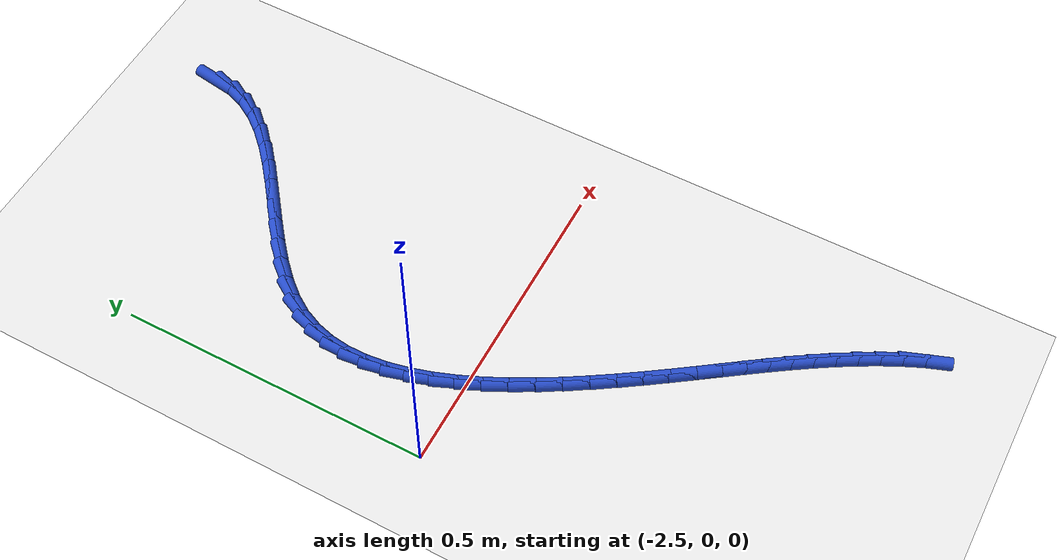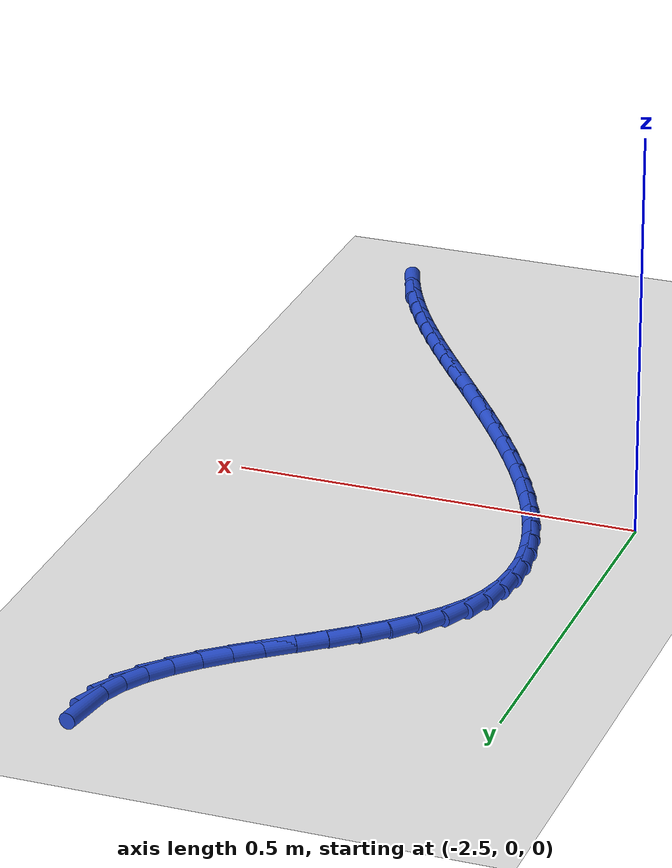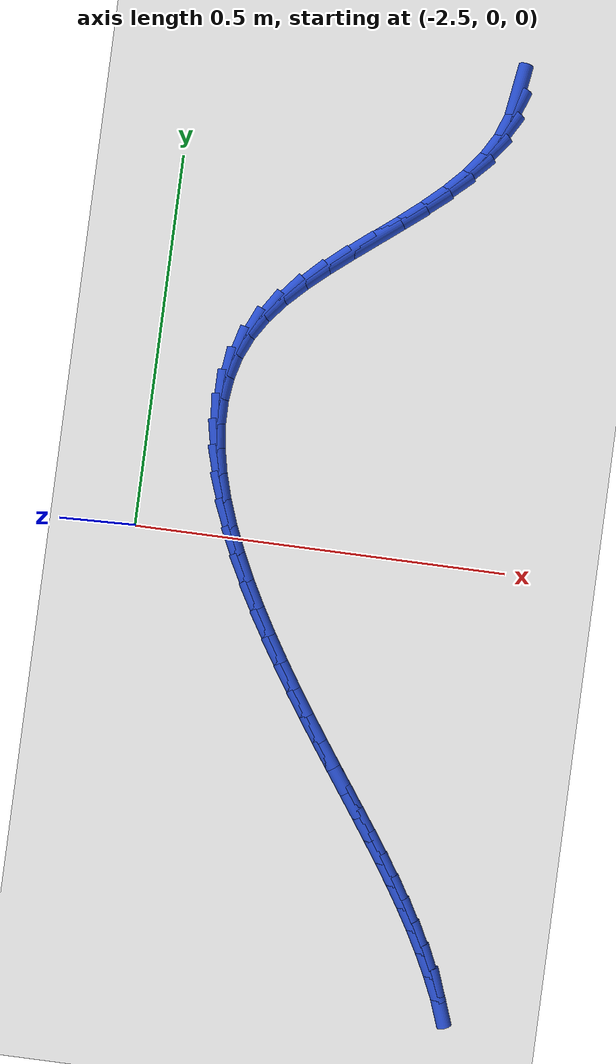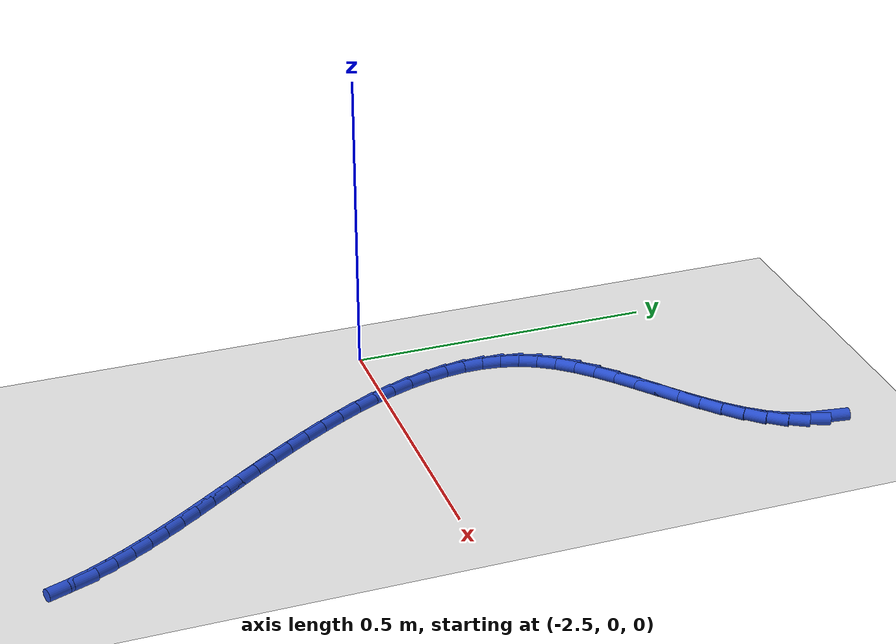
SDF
<sdf version="1.6">
 <world name="default">
  <model name="ground_plane">
   <static>1</static>
   <link name="link">
    <collision name="collision">
     <geometry><plane><normal>0 0 1</normal><size>100 100</size></plane></geometry>
     <surface><friction><ode><mu>100</mu><mu2>50</mu2></ode></friction></surface>
    </collision>
    <visual name="visual">
     <cast_shadows>0</cast_shadows>
     <geometry><plane><normal>0 0 1</normal><size>100 100</size></plane></geometry>
     <material>
      <script><uri>file://media/materials/scripts/gazebo.material</uri><name>Gazebo/WhiteGlow</name></script>
     </material>
    </visual>
   </link>
  </model>
  <model name="line">
   <link name="link_107">
    <pose>-2.067058191269066 0.6368177555527194 0.01 0 1.57 1.4261822368312853</pose>
    <collision name="collision">
     <geometry><cylinder><radius>0.01</radius><length>0.08</length></cylinder></geometry>
    </collision>
    <visual name="visual">
     <material>
      <script><name>Gazebo/Blue</name><uri>file://media/materials/scripts/gazebo.material</uri></script>
     </material>
     <geometry><cylinder><radius>0.01</radius><length>0.08</length></cylinder></geometry>
    </visual>
   </link>
   <link name="link_108">
    <pose>-2.0716982339166807 0.604956051340276 0.01 0 1.57 1.2206146301433258</pose>
    <collision name="collision">
     <geometry><cylinder><radius>0.01</radius><length>0.08</length></cylinder></geometry>
    </collision>
    <visual name="visual">
     <material>
      <script><name>Gazebo/Blue</name><uri>file://media/materials/scripts/gazebo.material</uri></script>
     </material>
     <geometry><cylinder><radius>0.01</radius><length>0.08</length></cylinder></geometry>
    </visual>
   </link>
   <link name="link_109">
    <pose>-2.082626198112787 0.5750356393155613 0.01 0 1.57 1.046548734440967</pose>
    <collision name="collision">
     <geometry><cylinder><radius>0.01</radius><length>0.08</length></cylinder></geometry>
    </collision>
    <visual name="visual">
     <material>
      <script><name>Gazebo/Blue</name><uri>file://media/materials/scripts/gazebo.material</uri></script>
     </material>
     <geometry><cylinder><radius>0.01</radius><length>0.08</length></cylinder></geometry>
    </visual>
   </link>
   <link name="link_110">
    <pose>-2.098957802761702 0.5467908075974574 0.01 0 1.57 0.9102333662154162</pose>
    <collision name="collision">
     <geometry><cylinder><radius>0.01</radius><length>0.08</length></cylinder></geometry>
    </collision>
    <visual name="visual">
     <material>
      <script><name>Gazebo/Blue</name><uri>file://media/materials/scripts/gazebo.material</uri></script>
     </material>
     <geometry><cylinder><radius>0.01</radius><length>0.08</length></cylinder></geometry>
    </visual>
   </link>
   <link name="link_111">
    <pose>-2.119808766767741 0.519955844304846 0.01 0 1.57 0.8094039164450072</pose>
    <collision name="collision">
     <geometry><cylinder><radius>0.01</radius><length>0.08</length></cylinder></geometry>
    </collision>
    <visual name="visual">
     <material>
      <script><name>Gazebo/Blue</name><uri>file://media/materials/scripts/gazebo.material</uri></script>
     </material>
     <geometry><cylinder><radius>0.01</radius><length>0.08</length></cylinder></geometry>
    </visual>
   </link>
   <link name="link_112">
    <pose>-2.1442948090352196 0.4942650375566095 0.01 0 1.57 0.7388513181055697</pose>
    <collision name="collision">
     <geometry><cylinder><radius>0.01</radius><length>0.08</length></cylinder></geometry>
    </collision>
    <visual name="visual">
     <material>
      <script><name>Gazebo/Blue</name><uri>file://media/materials/scripts/gazebo.material</uri></script>
     </material>
     <geometry><cylinder><radius>0.01</radius><length>0.08</length></cylinder></geometry>
    </visual>
   </link>
   <link name="link_113">
    <pose>-2.171531648468454 0.46945267547162994 0.01 0 1.57 0.6936591765680888</pose>
    <collision name="collision">
     <geometry><cylinder><radius>0.01</radius><length>0.08</length></cylinder></geometry>
    </collision>
    <visual name="visual">
     <material>
      <script><name>Gazebo/Blue</name><uri>file://media/materials/scripts/gazebo.material</uri></script>
     </material>
     <geometry><cylinder><radius>0.01</radius><length>0.08</length></cylinder></geometry>
    </visual>
   </link>
   <link name="link_114">
    <pose>-2.200635003971758 0.4452530461687894 0.01 0 1.57 0.670350606830472</pose>
    <collision name="collision">
     <geometry><cylinder><radius>0.01</radius><length>0.08</length></cylinder></geometry>
    </collision>
    <visual name="visual">
     <material>
      <script><name>Gazebo/Blue</name><uri>file://media/materials/scripts/gazebo.material</uri></script>
     </material>
     <geometry><cylinder><radius>0.01</radius><length>0.08</length></cylinder></geometry>
    </visual>
   </link>
   <link name="link_115">
    <pose>-2.23072059444945 0.42140043776697006 0.01 0 1.57 0.667108333396724</pose>
    <collision name="collision">
     <geometry><cylinder><radius>0.01</radius><length>0.08</length></cylinder></geometry>
    </collision>
    <visual name="visual">
     <material>
      <script><name>Gazebo/Blue</name><uri>file://media/materials/scripts/gazebo.material</uri></script>
     </material>
     <geometry><cylinder><radius>0.01</radius><length>0.08</length></cylinder></geometry>
    </visual>
   </link>
   <link name="link_116">
    <pose>-2.260904138805843 0.3976291383850539 0.01 0 1.57 0.6837586650184632</pose>
    <collision name="collision">
     <geometry><cylinder><radius>0.01</radius><length>0.08</length></cylinder></geometry>
    </collision>
    <visual name="visual">
     <material>
      <script><name>Gazebo/Blue</name><uri>file://media/materials/scripts/gazebo.material</uri></script>
     </material>
     <geometry><cylinder><radius>0.01</radius><length>0.08</length></cylinder></geometry>
    </visual>
   </link>
   <link name="link_117">
    <pose>-2.2903013559452536 0.37367343614192305 0.01 0 1.57 0.7217849470623986</pose>
    <collision name="collision">
     <geometry><cylinder><radius>0.01</radius><length>0.08</length></cylinder></geometry>
    </collision>
    <visual name="visual">
     <material>
      <script><name>Gazebo/Blue</name><uri>file://media/materials/scripts/gazebo.material</uri></script>
     </material>
     <geometry><cylinder><radius>0.01</radius><length>0.08</length></cylinder></geometry>
    </visual>
   </link>
   <link name="link_118">
    <pose>-2.3180279647719972 0.3492676191564596 0.01 0 1.57 0.7844024894174982</pose>
    <collision name="collision">
     <geometry><cylinder><radius>0.01</radius><length>0.08</length></cylinder></geometry>
    </collision>
    <visual name="visual">
     <material>
      <script><name>Gazebo/Blue</name><uri>file://media/materials/scripts/gazebo.material</uri></script>
     </material>
     <geometry><cylinder><radius>0.01</radius><length>0.08</length></cylinder></geometry>
    </visual>
   </link>
   <link name="link_119">
    <pose>-2.3431996841903895 0.32414597554754565 0.01 0 1.57 0.8765127258002611</pose>
    <collision name="collision">
     <geometry><cylinder><radius>0.01</radius><length>0.08</length></cylinder></geometry>
    </collision>
    <visual name="visual">
     <material>
      <script><name>Gazebo/Blue</name><uri>file://media/materials/scripts/gazebo.material</uri></script>
     </material>
     <geometry><cylinder><radius>0.01</radius><length>0.08</length></cylinder></geometry>
    </visual>
   </link>
   <link name="link_120">
    <pose>-2.364932233104746 0.2980427934340637 0.01 0 1.57 1.0038577216702302</pose>
    <collision name="collision">
     <geometry><cylinder><radius>0.01</radius><length>0.08</length></cylinder></geometry>
    </collision>
    <visual name="visual">
     <material>
      <script><name>Gazebo/Blue</name><uri>file://media/materials/scripts/gazebo.material</uri></script>
     </material>
     <geometry><cylinder><radius>0.01</radius><length>0.08</length></cylinder></geometry>
    </visual>
   </link>
   <link name="link_121">
    <pose>-2.382344420284443 0.2706934298756746 0.01 0 1.57 1.1577395200357736</pose>
    <collision name="collision">
     <geometry><cylinder><radius>0.01</radius><length>0.08</length></cylinder></geometry>
    </collision>
    <visual name="visual">
     <material>
      <script><name>Gazebo/Blue</name><uri>file://media/materials/scripts/gazebo.material</uri></script>
     </material>
     <geometry><cylinder><radius>0.01</radius><length>0.08</length></cylinder></geometry>
    </visual>
   </link>
   <link name="link_122">
    <pose>-2.3949353267216025 0.24196479734896617 0.01 0 1.57 1.3097298042789844</pose>
    <collision name="collision">
     <geometry><cylinder><radius>0.01</radius><length>0.08</length></cylinder></geometry>
    </collision>
    <visual name="visual">
     <material>
      <script><name>Gazebo/Blue</name><uri>file://media/materials/scripts/gazebo.material</uri></script>
     </material>
     <geometry><cylinder><radius>0.01</radius><length>0.08</length></cylinder></geometry>
    </visual>
   </link>
   <link name="link_123">
    <pose>-2.4029460453627185 0.21198050783730554 0.01 0 1.57 1.4505125072995133</pose>
    <collision name="collision">
     <geometry><cylinder><radius>0.01</radius><length>0.08</length></cylinder></geometry>
    </collision>
    <visual name="visual">
     <material>
      <script><name>Gazebo/Blue</name><uri>file://media/materials/scripts/gazebo.material</uri></script>
     </material>
     <geometry><cylinder><radius>0.01</radius><length>0.08</length></cylinder></geometry>
    </visual>
   </link>
   <link name="link_124">
    <pose>-2.406703407417629 0.18089383453070632 0.01 0 1.57 -1.5655159269244852</pose>
    <collision name="collision">
     <geometry><cylinder><radius>0.01</radius><length>0.08</length></cylinder></geometry>
    </collision>
    <visual name="visual">
     <material>
      <script><name>Gazebo/Blue</name><uri>file://media/materials/scripts/gazebo.material</uri></script>
     </material>
     <geometry><cylinder><radius>0.01</radius><length>0.08</length></cylinder></geometry>
    </visual>
   </link>
   <link name="link_125">
    <pose>-2.406534244096172 0.14885805061918211 0.01 0 1.57 -1.4565030864793602</pose>
    <collision name="collision">
     <geometry><cylinder><radius>0.01</radius><length>0.08</length></cylinder></geometry>
    </collision>
    <visual name="visual">
     <material>
      <script><name>Gazebo/Blue</name><uri>file://media/materials/scripts/gazebo.material</uri></script>
     </material>
     <geometry><cylinder><radius>0.01</radius><length>0.08</length></cylinder></geometry>
    </visual>
   </link>
   <link name="link_126">
    <pose>-2.4027653866081873 0.1160264292927465 0.01 0 1.57 -1.3634567662010297</pose>
    <collision name="collision">
     <geometry><cylinder><radius>0.01</radius><length>0.08</length></cylinder></geometry>
    </collision>
    <visual name="visual">
     <material>
      <script><name>Gazebo/Blue</name><uri>file://media/materials/scripts/gazebo.material</uri></script>
     </material>
     <geometry><cylinder><radius>0.01</radius><length>0.08</length></cylinder></geometry>
    </visual>
   </link>
   <link name="link_127">
    <pose>-2.3957236661635113 0.08255224374141323 0.01 0 1.57 -1.2847856868411278</pose>
    <collision name="collision">
     <geometry><cylinder><radius>0.01</radius><length>0.08</length></cylinder></geometry>
    </collision>
    <visual name="visual">
     <material>
      <script><name>Gazebo/Blue</name><uri>file://media/materials/scripts/gazebo.material</uri></script>
     </material>
     <geometry><cylinder><radius>0.01</radius><length>0.08</length></cylinder></geometry>
    </visual>
   </link>
   <link name="link_128">
    <pose>-2.3857359139719843 0.04858876715519581 0.01 0 1.57 -1.2185686491611791</pose>
    <collision name="collision">
     <geometry><cylinder><radius>0.01</radius><length>0.08</length></cylinder></geometry>
    </collision>
    <visual name="visual">
     <material>
      <script><name>Gazebo/Blue</name><uri>file://media/materials/scripts/gazebo.material</uri></script>
     </material>
     <geometry><cylinder><radius>0.01</radius><length>0.08</length></cylinder></geometry>
    </visual>
   </link>
   <link name="link_129">
    <pose>-2.373128961243444 0.014289272724107942 0.01 0 1.57 -1.1629383998881784</pose>
    <collision name="collision">
     <geometry><cylinder><radius>0.01</radius><length>0.08</length></cylinder></geometry>
    </collision>
    <visual name="visual">
     <material>
      <script><name>Gazebo/Blue</name><uri>file://media/materials/scripts/gazebo.material</uri></script>
     </material>
     <geometry><cylinder><radius>0.01</radius><length>0.08</length></cylinder></geometry>
    </visual>
   </link>
   <link name="link_130">
    <pose>-2.3582296391877287 -0.02019296636183678 0.01 0 1.57 -1.1162532031341228</pose>
    <collision name="collision">
     <geometry><cylinder><radius>0.01</radius><length>0.08</length></cylinder></geometry>
    </collision>
    <visual name="visual">
     <material>
      <script><name>Gazebo/Blue</name><uri>file://media/materials/scripts/gazebo.material</uri></script>
     </material>
     <geometry><cylinder><radius>0.01</radius><length>0.08</length></cylinder></geometry>
    </visual>
   </link>
   <link name="link_131">
    <pose>-2.341364779014677 -0.0547046769126248 0.01 0 1.57 -1.077148053903103</pose>
    <collision name="collision">
     <geometry><cylinder><radius>0.01</radius><length>0.08</length></cylinder></geometry>
    </collision>
    <visual name="visual">
     <material>
      <script><name>Gazebo/Blue</name><uri>file://media/materials/scripts/gazebo.material</uri></script>
     </material>
     <geometry><cylinder><radius>0.01</radius><length>0.08</length></cylinder></geometry>
    </visual>
   </link>
   <link name="link_132">
    <pose>-2.3228612119341268 -0.08909258573824233 0.01 0 1.57 -1.044529276329426</pose>
    <collision name="collision">
     <geometry><cylinder><radius>0.01</radius><length>0.08</length></cylinder></geometry>
    </collision>
    <visual name="visual">
     <material>
      <script><name>Gazebo/Blue</name><uri>file://media/materials/scripts/gazebo.material</uri></script>
     </material>
     <geometry><cylinder><radius>0.01</radius><length>0.08</length></cylinder></geometry>
    </visual>
   </link>
   <link name="link_133">
    <pose>-2.3030457691559176 -0.12320341964867586 0.01 0 1.57 -1.017548548465951</pose>
    <collision name="collision">
     <geometry><cylinder><radius>0.01</radius><length>0.08</length></cylinder></geometry>
    </collision>
    <visual name="visual">
     <material>
      <script><name>Gazebo/Blue</name><uri>file://media/materials/scripts/gazebo.material</uri></script>
     </material>
     <geometry><cylinder><radius>0.01</radius><length>0.08</length></cylinder></geometry>
    </visual>
   </link>
   <link name="link_134">
    <pose>-2.2822452818898866 -0.15688390545391173 0.01 0 1.57 -0.9955744984989615</pose>
    <collision name="collision">
     <geometry><cylinder><radius>0.01</radius><length>0.08</length></cylinder></geometry>
    </collision>
    <visual name="visual">
     <material>
      <script><name>Gazebo/Blue</name><uri>file://media/materials/scripts/gazebo.material</uri></script>
     </material>
     <geometry><cylinder><radius>0.01</radius><length>0.08</length></cylinder></geometry>
    </visual>
   </link>
   <link name="link_135">
    <pose>-2.2607865813458727 -0.1899807699639363 0.01 0 1.57 -0.9781704984110245</pose>
    <collision name="collision">
     <geometry><cylinder><radius>0.01</radius><length>0.08</length></cylinder></geometry>
    </collision>
    <visual name="visual">
     <material>
      <script><name>Gazebo/Blue</name><uri>file://media/materials/scripts/gazebo.material</uri></script>
     </material>
     <geometry><cylinder><radius>0.01</radius><length>0.08</length></cylinder></geometry>
    </visual>
   </link>
   <link name="link_136">
    <pose>-2.2389964987337145 -0.22234073998873594 0.01 0 1.57 -0.9650831172504022</pose>
    <collision name="collision">
     <geometry><cylinder><radius>0.01</radius><length>0.08</length></cylinder></geometry>
    </collision>
    <visual name="visual">
     <material>
      <script><name>Gazebo/Blue</name><uri>file://media/materials/scripts/gazebo.material</uri></script>
     </material>
     <geometry><cylinder><radius>0.01</radius><length>0.08</length></cylinder></geometry>
    </visual>
   </link>
   <link name="link_137">
    <pose>-2.21720186526325 -0.25381054233829703 0.01 0 1.57 -0.9562330524676474</pose>
    <collision name="collision">
     <geometry><cylinder><radius>0.01</radius><length>0.08</length></cylinder></geometry>
    </collision>
    <visual name="visual">
     <material>
      <script><name>Gazebo/Blue</name><uri>file://media/materials/scripts/gazebo.material</uri></script>
     </material>
     <geometry><cylinder><radius>0.01</radius><length>0.08</length></cylinder></geometry>
    </visual>
   </link>
   <link name="link_138">
    <pose>-2.1957075128188306 -0.2842673182723485 0.01 0 1.57 -0.9517182318705578</pose>
    <collision name="collision">
     <geometry><cylinder><radius>0.01</radius><length>0.08</length></cylinder></geometry>
    </collision>
    <visual name="visual">
     <material>
      <script><name>Gazebo/Blue</name><uri>file://media/materials/scripts/gazebo.material</uri></script>
     </material>
     <geometry><cylinder><radius>0.01</radius><length>0.08</length></cylinder></geometry>
    </visual>
   </link>
   <link name="link_139">
    <pose>-2.174655701528656 -0.3138129673283137 0.01 0 1.57 -0.9518821123698832</pose>
    <collision name="collision">
     <geometry><cylinder><radius>0.01</radius><length>0.08</length></cylinder></geometry>
    </collision>
    <visual name="visual">
     <material>
      <script><name>Gazebo/Blue</name><uri>file://media/materials/scripts/gazebo.material</uri></script>
     </material>
     <geometry><cylinder><radius>0.01</radius><length>0.08</length></cylinder></geometry>
    </visual>
   </link>
   <link name="link_140">
    <pose>-2.15411583303369 -0.34265011716819194 0.01 0 1.57 -0.9570767195618233</pose>
    <collision name="collision">
     <geometry><cylinder><radius>0.01</radius><length>0.08</length></cylinder></geometry>
    </collision>
    <visual name="visual">
     <material>
      <script><name>Gazebo/Blue</name><uri>file://media/materials/scripts/gazebo.material</uri></script>
     </material>
     <geometry><cylinder><radius>0.01</radius><length>0.08</length></cylinder></geometry>
    </visual>
   </link>
   <link name="link_141">
    <pose>-2.134156965445384 -0.3709818703895047 0.01 0 1.57 -0.9675755332610906</pose>
    <collision name="collision">
     <geometry><cylinder><radius>0.01</radius><length>0.08</length></cylinder></geometry>
    </collision>
    <visual name="visual">
     <material>
      <script><name>Gazebo/Blue</name><uri>file://media/materials/scripts/gazebo.material</uri></script>
     </material>
     <geometry><cylinder><radius>0.01</radius><length>0.08</length></cylinder></geometry>
    </visual>
   </link>
   <link name="link_142">
    <pose>-2.11484815687519 -0.39901132958977303 0.01 0 1.57 -0.9835497873407403</pose>
    <collision name="collision">
     <geometry><cylinder><radius>0.01</radius><length>0.08</length></cylinder></geometry>
    </collision>
    <visual name="visual">
     <material>
      <script><name>Gazebo/Blue</name><uri>file://media/materials/scripts/gazebo.material</uri></script>
     </material>
     <geometry><cylinder><radius>0.01</radius><length>0.08</length></cylinder></geometry>
    </visual>
   </link>
   <link name="link_143">
    <pose>-2.096258465434558 -0.4269415973665184 0.01 0 1.57 -1.005043061744167</pose>
    <collision name="collision">
     <geometry><cylinder><radius>0.01</radius><length>0.08</length></cylinder></geometry>
    </collision>
    <visual name="visual">
     <material>
      <script><name>Gazebo/Blue</name><uri>file://media/materials/scripts/gazebo.material</uri></script>
     </material>
     <geometry><cylinder><radius>0.01</radius><length>0.08</length></cylinder></geometry>
    </visual>
   </link>
   <link name="link_144">
    <pose>-2.07845694923494 -0.454975776317262 0.01 0 1.57 -1.0319461915763832</pose>
    <collision name="collision">
     <geometry><cylinder><radius>0.01</radius><length>0.08</length></cylinder></geometry>
    </collision>
    <visual name="visual">
     <material>
      <script><name>Gazebo/Blue</name><uri>file://media/materials/scripts/gazebo.material</uri></script>
     </material>
     <geometry><cylinder><radius>0.01</radius><length>0.08</length></cylinder></geometry>
    </visual>
   </link>
   <link name="link_145">
    <pose>-2.061512666387788 -0.4833169690395243 0.01 0 1.57 -1.0639763287180728</pose>
    <collision name="collision">
     <geometry><cylinder><radius>0.01</radius><length>0.08</length></cylinder></geometry>
    </collision>
    <visual name="visual">
     <material>
      <script><name>Gazebo/Blue</name><uri>file://media/materials/scripts/gazebo.material</uri></script>
     </material>
     <geometry><cylinder><radius>0.01</radius><length>0.08</length></cylinder></geometry>
    </visual>
   </link>
   <link name="link_146">
    <pose>-2.0454946750045515 -0.5121682781308284 0.01 0 1.57 -1.1006654027063953</pose>
    <collision name="collision">
     <geometry><cylinder><radius>0.01</radius><length>0.08</length></cylinder></geometry>
    </collision>
    <visual name="visual">
     <material>
      <script><name>Gazebo/Blue</name><uri>file://media/materials/scripts/gazebo.material</uri></script>
     </material>
     <geometry><cylinder><radius>0.01</radius><length>0.08</length></cylinder></geometry>
    </visual>
   </link>
   <link name="link_147">
    <pose>-2.030472033196683 -0.5417328061886946 0.01 0 1.57 -1.1428864067656097</pose>
    <collision name="collision">
     <geometry><cylinder><radius>0.01</radius><length>0.08</length></cylinder></geometry>
    </collision>
    <visual name="visual">
     <material>
      <script><name>Gazebo/Blue</name><uri>file://media/materials/scripts/gazebo.material</uri></script>
     </material>
     <geometry><cylinder><radius>0.01</radius><length>0.08</length></cylinder></geometry>
    </visual>
   </link>
   <link name="link_148">
    <pose>-2.0165531193743904 -0.5722504658820766 0.01 0 1.57 -1.2155247396222202</pose>
    <collision name="collision">
     <geometry><cylinder><radius>0.01</radius><length>0.08</length></cylinder></geometry>
    </collision>
    <visual name="visual">
     <material>
      <script><name>Gazebo/Blue</name><uri>file://media/materials/scripts/gazebo.material</uri></script>
     </material>
     <geometry><cylinder><radius>0.01</radius><length>0.08</length></cylinder></geometry>
    </visual>
   </link>
  </model>
 </world>
</sdf>
